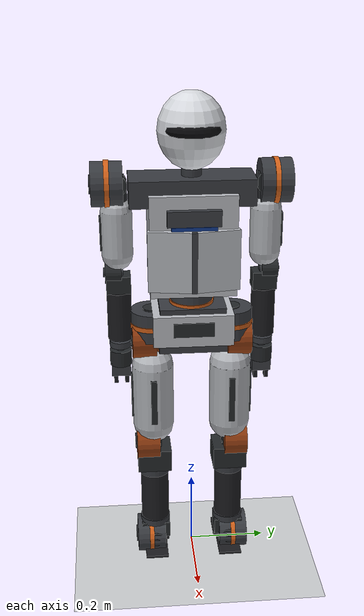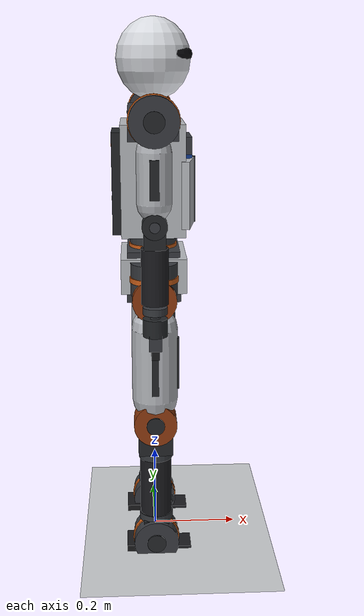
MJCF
<mujoco model="euh1">
  <compiler angle="radian" autolimits="true" />
  <option timestep="0.002" integrator="implicitfast" />
  <visual>
    <global offwidth="1920" offheight="1080" />
    <headlight ambient="0.22 0.22 0.22" diffuse="0.28 0.28 0.28" specular="0.05 0.05 0.05" />
  </visual>
  <asset>
    <texture type="skybox" builtin="gradient" rgb1="0.72 0.76 0.82" rgb2="0.93 0.94 0.96" width="256" height="256" />
    <material name="alu" rgba="0.72 0.73 0.75 1" specular="0.55" shininess="0.35" reflectance="0" />
    <material name="graphite" rgba="0.22 0.23 0.25 1" specular="0.45" shininess="0.5" reflectance="0" />
    <material name="graphite_dark" rgba="0.14 0.15 0.16 1" specular="0.4" shininess="0.55" reflectance="0" />
    <material name="carbon" rgba="0.11 0.11 0.125 1" specular="0.35" shininess="0.65" reflectance="0" />
    <material name="pod_orange" rgba="0.56 0.23 0.06 1" specular="0.65" shininess="0.55" reflectance="0" />
    <material name="accent_orange" rgba="0.82 0.38 0.10 1" specular="0.6" shininess="0.5" reflectance="0" />
    <material name="eu_blue" rgba="0.06 0.22 0.55 1" specular="0.45" shininess="0.45" reflectance="0" />
    <material name="visor" rgba="0.03 0.03 0.04 1" specular="0.9" shininess="0.85" reflectance="0" />
    <material name="shell_white" rgba="0.85 0.86 0.88 1" specular="0.6" shininess="0.55" reflectance="0" />
    <material name="rubber" rgba="0.10 0.10 0.11 1" specular="0.08" shininess="0.12" reflectance="0" />
    <material name="studio_floor" rgba="0.80 0.81 0.82 1" specular="0.4" shininess="0.3" reflectance="0.03" />
  </asset>
  <default>
    <geom contype="0" conaffinity="0" group="3" />
    <default class="collision">
      <geom contype="1" conaffinity="1" group="0" condim="4" friction="1 0.02 0.0001" />
    </default>
    <default class="visual">
      <geom contype="0" conaffinity="0" group="2" />
    </default>
    <default class="actA">
      <joint damping="4" armature="0.023" />
      <position kp="120" forcerange="-80 80" />
    </default>
    <default class="actB">
      <joint damping="2.5" armature="0.0065" />
      <position kp="60" forcerange="-48 48" />
    </default>
    <default class="actC">
      <joint damping="1.5" armature="0.0013" />
      <position kp="30" forcerange="-20 20" />
    </default>
  </default>
  <worldbody>
    <light name="key" pos="2.2 -2.5 3.2" dir="-0.5 0.57 -0.65" directional="true" diffuse="0.65 0.65 0.65" specular="0.3 0.3 0.3" />
    <light name="fill" pos="-2.5 2.0 2.0" dir="0.6 -0.5 -0.45" directional="true" diffuse="0.25 0.25 0.27" specular="0 0 0" castshadow="false" />
    <light name="rim" pos="-2.0 -1.2 2.6" dir="0.6 0.35 -0.6" directional="true" diffuse="0.35 0.35 0.38" specular="0.45 0.45 0.45" castshadow="false" />
    <geom name="floor" type="plane" size="10 10 0.1" material="studio_floor" contype="1" conaffinity="1" condim="4" friction="1 0.02 0.0001" group="0" />
    <body name="pelvis" pos="0 0 0.625202">
      <freejoint name="root" />
      <geom name="pelvis_struct" type="capsule" fromto="0 -0.08 0.05 0 0.08 0.05" size="0.06" mass="0.6" rgba="0.55 0.57 0.6 1" />
      <geom type="box" pos="0 0 0.045" size="0.075 0.1 0.04" mass="0" class="visual" material="alu" />
      <geom type="box" size="0.062 0.085 0.018" mass="0" class="visual" material="graphite" />
      <geom type="box" pos="0 0 0.088" size="0.06 0.082 0.01" mass="0" class="visual" material="graphite" />
      <geom type="box" pos="0.069 0 0.05" size="0.008 0.05 0.018" mass="0" class="visual" material="graphite_dark" />
      <body name="left_hip_yaw_link" pos="0 0.1 0">
        <joint name="left_hip_yaw" axis="0 0 1" range="-0.785398 0.785398" class="actB" />
        <geom name="left_hip_yaw_link_act_B_0" type="sphere" size="0.045" mass="1.15" rgba="0.95 0.65 0.15 1" />
        <geom type="cylinder" pos="0 0 0.042" size="0.053 0.0375" zaxis="0 0 1" mass="0" class="visual" material="graphite" />
        <geom type="cylinder" pos="0 0 0.042" size="0.02226 0.0415" zaxis="0 0 1" mass="0" class="visual" material="graphite_dark" />
        <geom type="cylinder" pos="0 0 0.042" size="0.0555 0.006" zaxis="0 0 1" mass="0" class="visual" material="accent_orange" />
        <body name="left_hip_roll_link" pos="0 0 0">
          <joint name="left_hip_roll" axis="1 0 0" range="-0.523599 0.785398" class="actA" />
          <geom name="left_hip_roll_link_act_A_0" type="sphere" size="0.05" mass="1.6" rgba="0.85 0.33 0.1 1" />
          <geom type="cylinder" pos="-0.008 0 0" size="0.05 0.03" zaxis="1 0 0" mass="0" class="visual" material="pod_orange" />
          <geom type="cylinder" pos="-0.008 0 0" size="0.021 0.034" zaxis="1 0 0" mass="0" class="visual" material="graphite_dark" />
          <body name="left_thigh" pos="0 0 0">
            <joint name="left_hip_pitch" axis="0 1 0" range="-2.0944 1.0472" class="actA" />
            <geom name="left_thigh_act_A_0" type="sphere" size="0.06" mass="1.6" rgba="0.85 0.33 0.1 1" />
            <geom name="left_thigh_capsule_1" type="capsule" fromto="0 0 -0.06 0 0 -0.25" size="0.05" mass="0.25" rgba="0.55 0.57 0.6 1" />
            <geom type="cylinder" pos="0 0.02 0" size="0.05 0.03" zaxis="0 1 0" mass="0" class="visual" material="pod_orange" />
            <geom type="cylinder" pos="0 0.02 0" size="0.021 0.034" zaxis="0 1 0" mass="0" class="visual" material="graphite_dark" />
            <geom type="capsule" fromto="0 0 -0.075 0 0 -0.245" size="0.053" mass="0" class="visual" material="alu" />
            <geom type="box" pos="0.0515 0 -0.16" size="0.0045 0.0075 0.062" mass="0" class="visual" material="graphite_dark" />
            <geom type="box" pos="0 0.0515 -0.16" size="0.0075 0.0045 0.062" mass="0" class="visual" material="graphite_dark" />
            <body name="left_shank" pos="0 0 -0.3">
              <joint name="left_knee_pitch" axis="0 1 0" range="0 2.61799" class="actA" />
              <geom name="left_shank_act_A_0" type="sphere" size="0.055" mass="1.6" rgba="0.85 0.33 0.1 1" />
              <geom name="left_shank_capsule_1" type="capsule" fromto="0 0 -0.05 0 0 -0.25" size="0.045" mass="0.2" rgba="0.55 0.57 0.6 1" />
              <geom type="cylinder" pos="0 0.015 0" size="0.05 0.03" zaxis="0 1 0" mass="0" class="visual" material="pod_orange" />
              <geom type="cylinder" pos="0 0.015 0" size="0.021 0.034" zaxis="0 1 0" mass="0" class="visual" material="graphite_dark" />
              <geom type="box" pos="0 0 -0.045" size="0.04 0.044 0.03" mass="0" class="visual" material="graphite_dark" />
              <geom type="cylinder" pos="0 0 -0.1665" size="0.037 0.0885" mass="0" class="visual" material="carbon" />
              <geom type="cylinder" pos="0 0 -0.085" size="0.0395 0.009" mass="0" class="visual" material="graphite" />
              <geom type="cylinder" pos="0 0 -0.245" size="0.0395 0.009" mass="0" class="visual" material="graphite" />
              <geom type="box" pos="0 0 -0.272" size="0.03 0.038 0.022" mass="0" class="visual" material="graphite_dark" />
              <body name="left_ankle_pitch_link" pos="0 0 -0.3">
                <joint name="left_ankle_pitch" axis="0 1 0" range="-0.872665 0.872665" class="actB" damping="4" />
                <geom name="left_ankle_pitch_link_act_B_0" type="sphere" size="0.045" mass="1.15" rgba="0.95 0.65 0.15 1" />
                <geom type="cylinder" pos="0 0.012 0" size="0.053 0.0375" zaxis="0 1 0" mass="0" class="visual" material="graphite" />
                <geom type="cylinder" pos="0 0.012 0" size="0.02226 0.0415" zaxis="0 1 0" mass="0" class="visual" material="graphite_dark" />
                <geom type="cylinder" pos="0 0.012 0" size="0.0555 0.006" zaxis="0 1 0" mass="0" class="visual" material="accent_orange" />
                <body name="left_foot" pos="0 0 0">
                  <joint name="left_ankle_roll" axis="1 0 0" range="-0.523599 0.523599" class="actB" />
                  <geom name="left_foot_act_B_0" type="sphere" size="0.04" mass="1.15" rgba="0.95 0.65 0.15 1" />
                  <geom name="left_foot_bota_ft_1" type="cylinder" pos="0 0 -0.022" size="0.024 0.0131" mass="0.06" rgba="0.25 0.3 0.35 1" />
                  <geom name="left_foot_box" type="box" pos="0.03 0 -0.035" size="0.1 0.04 0.015" mass="0.15" rgba="0.3 0.3 0.32 0" class="collision" />
                  <geom type="cylinder" pos="0.028 0 0" size="0.0275 0.02" zaxis="1 0 0" mass="0" class="visual" material="graphite_dark" />
                  <geom type="cylinder" pos="0.028 0 0" size="0.01155 0.024" zaxis="1 0 0" mass="0" class="visual" material="graphite" />
                  <geom type="cylinder" pos="0 0 -0.021" size="0.027 0.007" mass="0" class="visual" material="graphite" />
                  <geom type="box" pos="-0.035 0 -0.031" size="0.035 0.037 0.019" mass="0" class="visual" material="rubber" />
                  <geom type="box" pos="0.065 0 -0.043" size="0.065 0.037 0.007" mass="0" class="visual" material="rubber" />
                  <geom type="box" pos="0.045 0 -0.029" size="0.038 0.03 0.009" mass="0" class="visual" material="carbon" />
                </body>
              </body>
            </body>
          </body>
        </body>
      </body>
      <body name="right_hip_yaw_link" pos="0 -0.1 0">
        <joint name="right_hip_yaw" axis="0 0 1" range="-0.785398 0.785398" class="actB" />
        <geom name="right_hip_yaw_link_act_B_0" type="sphere" size="0.045" mass="1.15" rgba="0.95 0.65 0.15 1" />
        <geom type="cylinder" pos="0 0 0.042" size="0.053 0.0375" zaxis="0 0 1" mass="0" class="visual" material="graphite" />
        <geom type="cylinder" pos="0 0 0.042" size="0.02226 0.0415" zaxis="0 0 1" mass="0" class="visual" material="graphite_dark" />
        <geom type="cylinder" pos="0 0 0.042" size="0.0555 0.006" zaxis="0 0 1" mass="0" class="visual" material="accent_orange" />
        <body name="right_hip_roll_link" pos="0 0 0">
          <joint name="right_hip_roll" axis="1 0 0" range="-0.785398 0.523599" class="actA" />
          <geom name="right_hip_roll_link_act_A_0" type="sphere" size="0.05" mass="1.6" rgba="0.85 0.33 0.1 1" />
          <geom type="cylinder" pos="-0.008 0 0" size="0.05 0.03" zaxis="1 0 0" mass="0" class="visual" material="pod_orange" />
          <geom type="cylinder" pos="-0.008 0 0" size="0.021 0.034" zaxis="1 0 0" mass="0" class="visual" material="graphite_dark" />
          <body name="right_thigh" pos="0 0 0">
            <joint name="right_hip_pitch" axis="0 1 0" range="-2.0944 1.0472" class="actA" />
            <geom name="right_thigh_act_A_0" type="sphere" size="0.06" mass="1.6" rgba="0.85 0.33 0.1 1" />
            <geom name="right_thigh_capsule_1" type="capsule" fromto="0 0 -0.06 0 0 -0.25" size="0.05" mass="0.25" rgba="0.55 0.57 0.6 1" />
            <geom type="cylinder" pos="0 -0.02 0" size="0.05 0.03" zaxis="0 1 0" mass="0" class="visual" material="pod_orange" />
            <geom type="cylinder" pos="0 -0.02 0" size="0.021 0.034" zaxis="0 1 0" mass="0" class="visual" material="graphite_dark" />
            <geom type="capsule" fromto="0 0 -0.075 0 0 -0.245" size="0.053" mass="0" class="visual" material="alu" />
            <geom type="box" pos="0.0515 0 -0.16" size="0.0045 0.0075 0.062" mass="0" class="visual" material="graphite_dark" />
            <geom type="box" pos="0 -0.0515 -0.16" size="0.0075 0.0045 0.062" mass="0" class="visual" material="graphite_dark" />
            <body name="right_shank" pos="0 0 -0.3">
              <joint name="right_knee_pitch" axis="0 1 0" range="0 2.61799" class="actA" />
              <geom name="right_shank_act_A_0" type="sphere" size="0.055" mass="1.6" rgba="0.85 0.33 0.1 1" />
              <geom name="right_shank_capsule_1" type="capsule" fromto="0 0 -0.05 0 0 -0.25" size="0.045" mass="0.2" rgba="0.55 0.57 0.6 1" />
              <geom type="cylinder" pos="0 -0.015 0" size="0.05 0.03" zaxis="0 1 0" mass="0" class="visual" material="pod_orange" />
              <geom type="cylinder" pos="0 -0.015 0" size="0.021 0.034" zaxis="0 1 0" mass="0" class="visual" material="graphite_dark" />
              <geom type="box" pos="0 0 -0.045" size="0.04 0.044 0.03" mass="0" class="visual" material="graphite_dark" />
              <geom type="cylinder" pos="0 0 -0.1665" size="0.037 0.0885" mass="0" class="visual" material="carbon" />
              <geom type="cylinder" pos="0 0 -0.085" size="0.0395 0.009" mass="0" class="visual" material="graphite" />
              <geom type="cylinder" pos="0 0 -0.245" size="0.0395 0.009" mass="0" class="visual" material="graphite" />
              <geom type="box" pos="0 0 -0.272" size="0.03 0.038 0.022" mass="0" class="visual" material="graphite_dark" />
              <body name="right_ankle_pitch_link" pos="0 0 -0.3">
                <joint name="right_ankle_pitch" axis="0 1 0" range="-0.872665 0.872665" class="actB" damping="4" />
                <geom name="right_ankle_pitch_link_act_B_0" type="sphere" size="0.045" mass="1.15" rgba="0.95 0.65 0.15 1" />
                <geom type="cylinder" pos="0 -0.012 0" size="0.053 0.0375" zaxis="0 1 0" mass="0" class="visual" material="graphite" />
                <geom type="cylinder" pos="0 -0.012 0" size="0.02226 0.0415" zaxis="0 1 0" mass="0" class="visual" material="graphite_dark" />
                <geom type="cylinder" pos="0 -0.012 0" size="0.0555 0.006" zaxis="0 1 0" mass="0" class="visual" material="accent_orange" />
                <body name="right_foot" pos="0 0 0">
                  <joint name="right_ankle_roll" axis="1 0 0" range="-0.523599 0.523599" class="actB" />
                  <geom name="right_foot_act_B_0" type="sphere" size="0.04" mass="1.15" rgba="0.95 0.65 0.15 1" />
                  <geom name="right_foot_bota_ft_1" type="cylinder" pos="0 0 -0.022" size="0.024 0.0131" mass="0.06" rgba="0.25 0.3 0.35 1" />
                  <geom name="right_foot_box" type="box" pos="0.03 0 -0.035" size="0.1 0.04 0.015" mass="0.15" rgba="0.3 0.3 0.32 0" class="collision" />
                  <geom type="cylinder" pos="0.028 0 0" size="0.0275 0.02" zaxis="1 0 0" mass="0" class="visual" material="graphite_dark" />
                  <geom type="cylinder" pos="0.028 0 0" size="0.01155 0.024" zaxis="1 0 0" mass="0" class="visual" material="graphite" />
                  <geom type="cylinder" pos="0 0 -0.021" size="0.027 0.007" mass="0" class="visual" material="graphite" />
                  <geom type="box" pos="-0.035 0 -0.031" size="0.035 0.037 0.019" mass="0" class="visual" material="rubber" />
                  <geom type="box" pos="0.065 0 -0.043" size="0.065 0.037 0.007" mass="0" class="visual" material="rubber" />
                  <geom type="box" pos="0.045 0 -0.029" size="0.038 0.03 0.009" mass="0" class="visual" material="carbon" />
                </body>
              </body>
            </body>
          </body>
        </body>
      </body>
      <body name="torso" pos="0 0 0.1">
        <joint name="waist_yaw" axis="0 0 1" range="-1.0472 1.0472" class="actB" />
        <geom name="torso_act_B_0" type="sphere" size="0.05" mass="1.15" rgba="0.95 0.65 0.15 1" />
        <geom name="torso_capsule_1" type="capsule" fromto="0 0 0.03 0 0 0.27" size="0.09" mass="0.7" rgba="0.55 0.57 0.6 1" />
        <geom name="torso_battery_2" type="box" pos="-0.06 0 0.13" size="0.042 0.047 0.132" mass="2.9" rgba="0.25 0.3 0.35 1" />
        <geom name="torso_compute_vision_3" type="box" pos="0.07 0 0.24" size="0.04 0.05 0.04" mass="1.7" rgba="0.25 0.3 0.35 1" />
        <geom name="torso_head_4" type="sphere" pos="0 0 0.42" size="0.08" mass="0.25" rgba="0.85 0.85 0.88 1" />
        <geom type="cylinder" size="0.053 0.0375" zaxis="0 0 1" mass="0" class="visual" material="graphite" />
        <geom type="cylinder" size="0.02226 0.0415" zaxis="0 0 1" mass="0" class="visual" material="graphite_dark" />
        <geom type="cylinder" size="0.0555 0.006" zaxis="0 0 1" mass="0" class="visual" material="accent_orange" />
        <geom type="box" pos="0 0 0.16" size="0.072 0.105 0.125" mass="0" class="visual" material="alu" />
        <geom type="box" pos="0.08 0.052 0.13" size="0.009 0.058 0.075" euler="0 0 0.16" mass="0" class="visual" material="alu" />
        <geom type="box" pos="0.08 -0.052 0.13" size="0.009 0.058 0.075" euler="0 0 -0.16" mass="0" class="visual" material="alu" />
        <geom type="box" pos="0.094 0 0.13" size="0.0045 0.0065 0.0755" mass="0" class="visual" material="graphite" />
        <geom type="box" pos="0.079 0 0.235" size="0.009 0.064 0.019" mass="0" class="visual" material="graphite" />
        <geom type="box" pos="0.08 0 0.235" size="0.0055 0.054 0.0105" mass="0" class="visual" material="visor" />
        <geom type="box" pos="0.079 0 0.211" size="0.009 0.054 0.0045" mass="0" class="visual" material="eu_blue" />
        <geom type="box" pos="0 0 0.285" size="0.055 0.15 0.032" mass="0" class="visual" material="graphite" />
        <geom type="box" pos="-0.08 0 0.15" size="0.012 0.062 0.115" mass="0" class="visual" material="graphite_dark" />
        <geom type="box" pos="-0.0905 0 0.235" size="0.0025 0.028 0.005" mass="0" class="visual" material="accent_orange" />
        <geom type="box" pos="-0.0925 0 0.115" size="0.0008 0.042 0.0035" mass="0" class="visual" material="visor" />
        <geom type="box" pos="-0.0925 0 0.085" size="0.0008 0.042 0.0035" mass="0" class="visual" material="visor" />
        <geom type="cylinder" pos="0 0 0.315" size="0.024 0.022" mass="0" class="visual" material="graphite" />
        <geom type="ellipsoid" pos="0.004 0 0.423" size="0.084 0.081 0.091" mass="0" class="visual" material="shell_white" />
        <geom type="ellipsoid" pos="0.042 0 0.432" size="0.05 0.066 0.026" mass="0" class="visual" material="visor" />
        <body name="left_shoulder_pitch_link" pos="0 0.18 0.3">
          <joint name="left_shoulder_pitch" axis="0 1 0" range="-2.61799 1.0472" class="actB" />
          <geom name="left_shoulder_pitch_link_act_B_0" type="sphere" size="0.045" mass="1.15" rgba="0.95 0.65 0.15 1" />
          <geom type="cylinder" pos="0 0.02 0" size="0.053 0.0375" zaxis="0 1 0" mass="0" class="visual" material="graphite" />
          <geom type="cylinder" pos="0 0.02 0" size="0.02226 0.0415" zaxis="0 1 0" mass="0" class="visual" material="graphite_dark" />
          <geom type="cylinder" pos="0 0.02 0" size="0.0555 0.006" zaxis="0 1 0" mass="0" class="visual" material="accent_orange" />
          <body name="left_shoulder_roll_link" pos="0 0 0">
            <joint name="left_shoulder_roll" axis="1 0 0" range="-0.523599 2.79253" class="actC" />
            <geom name="left_shoulder_roll_link_act_C_0" type="sphere" size="0.04" mass="0.5" rgba="0.3 0.55 0.85 1" />
            <geom type="cylinder" pos="0.005 0 0" size="0.0275 0.02" zaxis="1 0 0" mass="0" class="visual" material="graphite_dark" />
            <geom type="cylinder" pos="0.005 0 0" size="0.01155 0.024" zaxis="1 0 0" mass="0" class="visual" material="graphite" />
            <body name="left_upper_arm" pos="0 0 0">
              <joint name="left_shoulder_yaw" axis="0 0 1" range="-1.5708 1.5708" class="actC" />
              <geom name="left_upper_arm_act_C_0" type="sphere" size="0.035" mass="0.5" rgba="0.3 0.55 0.85 1" />
              <geom name="left_upper_arm_capsule_1" type="capsule" fromto="0 0 -0.05 0 0 -0.18" size="0.035" mass="0.1" rgba="0.55 0.57 0.6 1" />
              <geom type="cylinder" pos="0 0 -0.032" size="0.0275 0.02" zaxis="0 0 1" mass="0" class="visual" material="graphite_dark" />
              <geom type="cylinder" pos="0 0 -0.032" size="0.01155 0.024" zaxis="0 0 1" mass="0" class="visual" material="graphite" />
              <geom type="capsule" fromto="0 0 -0.065 0 0 -0.175" size="0.038" mass="0" class="visual" material="alu" />
              <geom type="box" pos="0 0.0365 -0.12" size="0.01 0.0045 0.042" mass="0" class="visual" material="graphite_dark" />
              <body name="left_forearm" pos="0 0 -0.22">
                <joint name="left_elbow_pitch" axis="0 1 0" range="-2.53073 0" class="actC" />
                <geom name="left_forearm_act_C_0" type="sphere" size="0.04" mass="0.5" rgba="0.3 0.55 0.85 1" />
                <geom name="left_forearm_capsule_1" type="capsule" fromto="0 0 -0.05 0 0 -0.18" size="0.03" mass="0.08" rgba="0.55 0.57 0.6 1" />
                <geom type="cylinder" pos="0 0.012 0" size="0.0275 0.02" zaxis="0 1 0" mass="0" class="visual" material="graphite_dark" />
                <geom type="cylinder" pos="0 0.012 0" size="0.01155 0.024" zaxis="0 1 0" mass="0" class="visual" material="graphite" />
                <geom type="box" pos="0 0 -0.028" size="0.024 0.03 0.022" mass="0" class="visual" material="graphite_dark" />
                <geom type="cylinder" pos="0 0 -0.1125" size="0.03 0.0625" mass="0" class="visual" material="carbon" />
                <geom type="cylinder" pos="0 0 -0.19" size="0.027 0.008" mass="0" class="visual" material="graphite" />
                <body name="left_hand" pos="0 0 -0.22">
                  <joint name="left_wrist_roll" axis="0 0 1" range="-3.14159 3.14159" class="actC" />
                  <geom name="left_hand_act_C_0" type="sphere" size="0.035" mass="0.5" rgba="0.3 0.55 0.85 1" />
                  <geom name="left_hand_gripper_1" type="box" pos="0 0 -0.045" size="0.015 0.025 0.03" mass="0.05" rgba="0.25 0.3 0.35 1" />
                  <geom type="cylinder" pos="0 0 -0.008" size="0.0275 0.02" zaxis="0 0 1" mass="0" class="visual" material="graphite_dark" />
                  <geom type="cylinder" pos="0 0 -0.008" size="0.01155 0.024" zaxis="0 0 1" mass="0" class="visual" material="graphite" />
                  <geom type="box" pos="0 0 -0.04" size="0.014 0.024 0.018" mass="0" class="visual" material="graphite" />
                  <geom type="box" pos="0 0.014 -0.066" size="0.009 0.005 0.014" mass="0" class="visual" material="rubber" />
                  <geom type="box" pos="0 -0.014 -0.066" size="0.009 0.005 0.014" mass="0" class="visual" material="rubber" />
                </body>
              </body>
            </body>
          </body>
        </body>
        <body name="right_shoulder_pitch_link" pos="0 -0.18 0.3">
          <joint name="right_shoulder_pitch" axis="0 1 0" range="-2.61799 1.0472" class="actB" />
          <geom name="right_shoulder_pitch_link_act_B_0" type="sphere" size="0.045" mass="1.15" rgba="0.95 0.65 0.15 1" />
          <geom type="cylinder" pos="0 -0.02 0" size="0.053 0.0375" zaxis="0 1 0" mass="0" class="visual" material="graphite" />
          <geom type="cylinder" pos="0 -0.02 0" size="0.02226 0.0415" zaxis="0 1 0" mass="0" class="visual" material="graphite_dark" />
          <geom type="cylinder" pos="0 -0.02 0" size="0.0555 0.006" zaxis="0 1 0" mass="0" class="visual" material="accent_orange" />
          <body name="right_shoulder_roll_link" pos="0 0 0">
            <joint name="right_shoulder_roll" axis="1 0 0" range="-2.79253 0.523599" class="actC" />
            <geom name="right_shoulder_roll_link_act_C_0" type="sphere" size="0.04" mass="0.5" rgba="0.3 0.55 0.85 1" />
            <geom type="cylinder" pos="0.005 0 0" size="0.0275 0.02" zaxis="1 0 0" mass="0" class="visual" material="graphite_dark" />
            <geom type="cylinder" pos="0.005 0 0" size="0.01155 0.024" zaxis="1 0 0" mass="0" class="visual" material="graphite" />
            <body name="right_upper_arm" pos="0 0 0">
              <joint name="right_shoulder_yaw" axis="0 0 1" range="-1.5708 1.5708" class="actC" />
              <geom name="right_upper_arm_act_C_0" type="sphere" size="0.035" mass="0.5" rgba="0.3 0.55 0.85 1" />
              <geom name="right_upper_arm_capsule_1" type="capsule" fromto="0 0 -0.05 0 0 -0.18" size="0.035" mass="0.1" rgba="0.55 0.57 0.6 1" />
              <geom type="cylinder" pos="0 0 -0.032" size="0.0275 0.02" zaxis="0 0 1" mass="0" class="visual" material="graphite_dark" />
              <geom type="cylinder" pos="0 0 -0.032" size="0.01155 0.024" zaxis="0 0 1" mass="0" class="visual" material="graphite" />
              <geom type="capsule" fromto="0 0 -0.065 0 0 -0.175" size="0.038" mass="0" class="visual" material="alu" />
              <geom type="box" pos="0 -0.0365 -0.12" size="0.01 0.0045 0.042" mass="0" class="visual" material="graphite_dark" />
              <body name="right_forearm" pos="0 0 -0.22">
                <joint name="right_elbow_pitch" axis="0 1 0" range="-2.53073 0" class="actC" />
                <geom name="right_forearm_act_C_0" type="sphere" size="0.04" mass="0.5" rgba="0.3 0.55 0.85 1" />
                <geom name="right_forearm_capsule_1" type="capsule" fromto="0 0 -0.05 0 0 -0.18" size="0.03" mass="0.08" rgba="0.55 0.57 0.6 1" />
                <geom type="cylinder" pos="0 -0.012 0" size="0.0275 0.02" zaxis="0 1 0" mass="0" class="visual" material="graphite_dark" />
                <geom type="cylinder" pos="0 -0.012 0" size="0.01155 0.024" zaxis="0 1 0" mass="0" class="visual" material="graphite" />
                <geom type="box" pos="0 0 -0.028" size="0.024 0.03 0.022" mass="0" class="visual" material="graphite_dark" />
                <geom type="cylinder" pos="0 0 -0.1125" size="0.03 0.0625" mass="0" class="visual" material="carbon" />
                <geom type="cylinder" pos="0 0 -0.19" size="0.027 0.008" mass="0" class="visual" material="graphite" />
                <body name="right_hand" pos="0 0 -0.22">
                  <joint name="right_wrist_roll" axis="0 0 1" range="-3.14159 3.14159" class="actC" />
                  <geom name="right_hand_act_C_0" type="sphere" size="0.035" mass="0.5" rgba="0.3 0.55 0.85 1" />
                  <geom name="right_hand_gripper_1" type="box" pos="0 0 -0.045" size="0.015 0.025 0.03" mass="0.05" rgba="0.25 0.3 0.35 1" />
                  <geom type="cylinder" pos="0 0 -0.008" size="0.0275 0.02" zaxis="0 0 1" mass="0" class="visual" material="graphite_dark" />
                  <geom type="cylinder" pos="0 0 -0.008" size="0.01155 0.024" zaxis="0 0 1" mass="0" class="visual" material="graphite" />
                  <geom type="box" pos="0 0 -0.04" size="0.014 0.024 0.018" mass="0" class="visual" material="graphite" />
                  <geom type="box" pos="0 0.014 -0.066" size="0.009 0.005 0.014" mass="0" class="visual" material="rubber" />
                  <geom type="box" pos="0 -0.014 -0.066" size="0.009 0.005 0.014" mass="0" class="visual" material="rubber" />
                </body>
              </body>
            </body>
          </body>
        </body>
      </body>
    </body>
  </worldbody>
  <actuator>
    <position name="left_hip_yaw" joint="left_hip_yaw" ctrlrange="-0.785398 0.785398" class="actB" />
    <position name="left_hip_roll" joint="left_hip_roll" ctrlrange="-0.523599 0.785398" class="actA" />
    <position name="left_hip_pitch" joint="left_hip_pitch" ctrlrange="-2.0944 1.0472" class="actA" />
    <position name="left_knee_pitch" joint="left_knee_pitch" ctrlrange="0 2.61799" class="actA" />
    <position name="left_ankle_pitch" joint="left_ankle_pitch" ctrlrange="-0.872665 0.872665" class="actB" kp="120" />
    <position name="left_ankle_roll" joint="left_ankle_roll" ctrlrange="-0.523599 0.523599" class="actB" />
    <position name="right_hip_yaw" joint="right_hip_yaw" ctrlrange="-0.785398 0.785398" class="actB" />
    <position name="right_hip_roll" joint="right_hip_roll" ctrlrange="-0.785398 0.523599" class="actA" />
    <position name="right_hip_pitch" joint="right_hip_pitch" ctrlrange="-2.0944 1.0472" class="actA" />
    <position name="right_knee_pitch" joint="right_knee_pitch" ctrlrange="0 2.61799" class="actA" />
    <position name="right_ankle_pitch" joint="right_ankle_pitch" ctrlrange="-0.872665 0.872665" class="actB" kp="120" />
    <position name="right_ankle_roll" joint="right_ankle_roll" ctrlrange="-0.523599 0.523599" class="actB" />
    <position name="waist_yaw" joint="waist_yaw" ctrlrange="-1.0472 1.0472" class="actB" />
    <position name="left_shoulder_pitch" joint="left_shoulder_pitch" ctrlrange="-2.61799 1.0472" class="actB" />
    <position name="left_shoulder_roll" joint="left_shoulder_roll" ctrlrange="-0.523599 2.79253" class="actC" />
    <position name="left_shoulder_yaw" joint="left_shoulder_yaw" ctrlrange="-1.5708 1.5708" class="actC" />
    <position name="left_elbow_pitch" joint="left_elbow_pitch" ctrlrange="-2.53073 0" class="actC" />
    <position name="left_wrist_roll" joint="left_wrist_roll" ctrlrange="-3.14159 3.14159" class="actC" />
    <position name="right_shoulder_pitch" joint="right_shoulder_pitch" ctrlrange="-2.61799 1.0472" class="actB" />
    <position name="right_shoulder_roll" joint="right_shoulder_roll" ctrlrange="-2.79253 0.523599" class="actC" />
    <position name="right_shoulder_yaw" joint="right_shoulder_yaw" ctrlrange="-1.5708 1.5708" class="actC" />
    <position name="right_elbow_pitch" joint="right_elbow_pitch" ctrlrange="-2.53073 0" class="actC" />
    <position name="right_wrist_roll" joint="right_wrist_roll" ctrlrange="-3.14159 3.14159" class="actC" />
  </actuator>
  <keyframe>
    <key name="stand" qpos="0 0 0.625202 1 0 0 0 0 0 -0.3 0.6 -0.3 0 0 0 -0.3 0.6 -0.3 0 0 0 0.12 0 -0.3 0 0 -0.12 0 -0.3 0" ctrl="0 0 -0.3 0.6 -0.3 0 0 0 -0.3 0.6 -0.3 0 0 0 0.12 0 -0.3 0 0 -0.12 0 -0.3 0" />
  </keyframe>
</mujoco>
